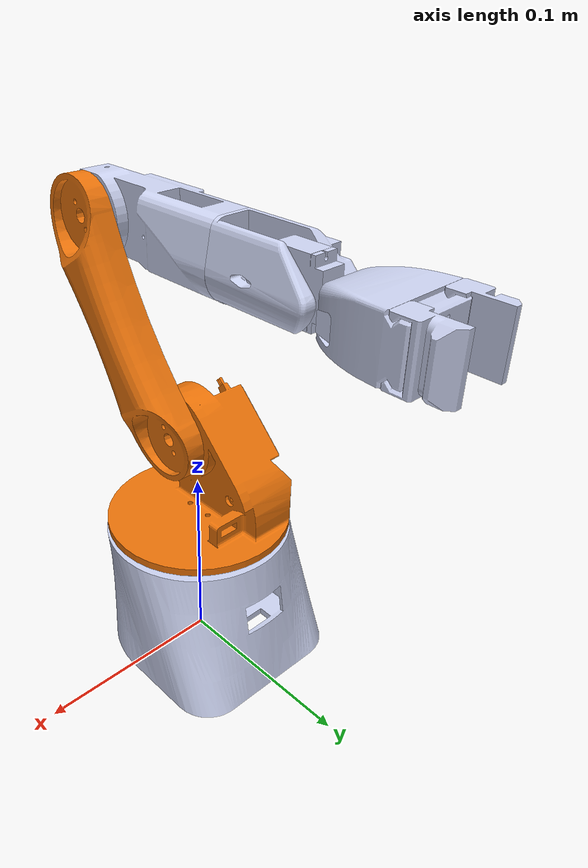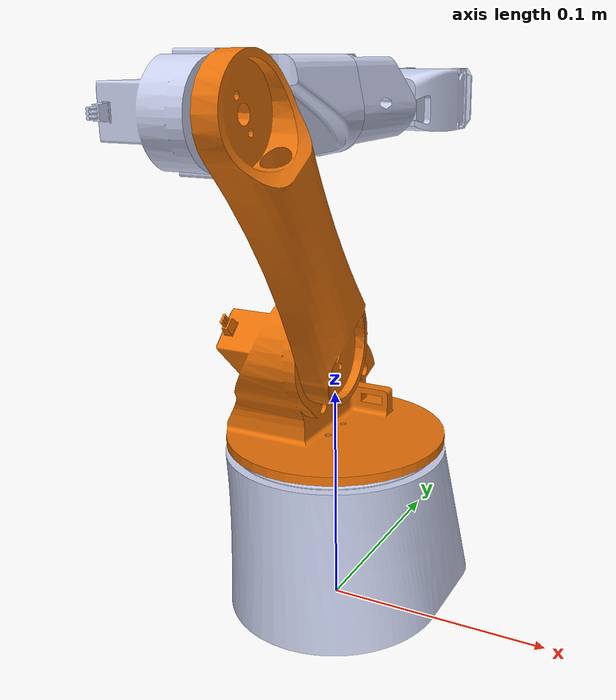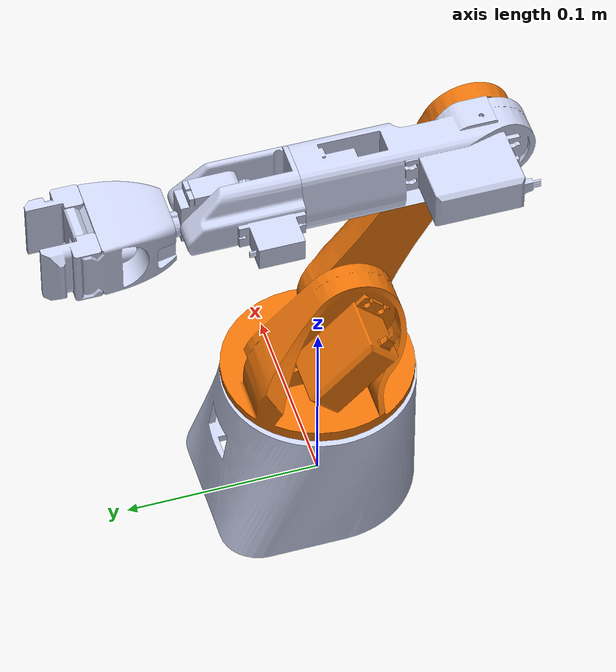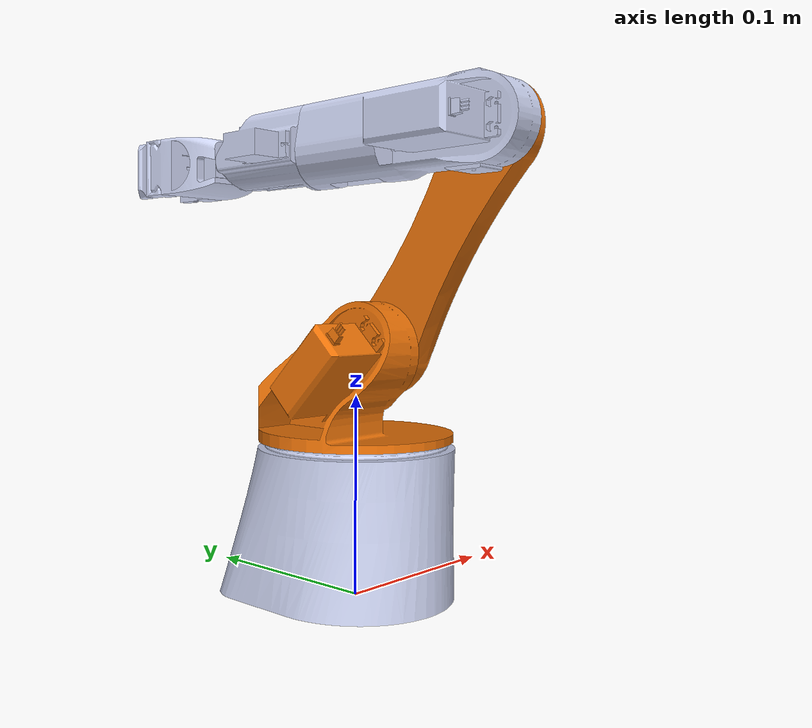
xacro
<?xml version="1.0"?>
<robot xmlns:xacro="http://www.ros.org/wiki/xacro" name="Drago">
    <xacro:arg name="initial_positions_file" default="initial_positions.yaml" />

    <!-- Import Drago urdf file -->
    <xacro:include filename="$(find drago_description_pkg)/urdf/drago.urdf" />

    <!-- Import control_xacro -->
    <xacro:include filename="Drago.ros2_control.xacro" />

    <xacro:Drago_ros2_control name="DragoSystem" initial_positions_file="$(arg initial_positions_file)"/>

</robot>

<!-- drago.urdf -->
<robot
  name="Drago">
  <link
    name="base_link">
    <inertial>
      <origin
        xyz="-7.72856457749698E-05 0.000985506421665394 0.0316640950040682"
        rpy="0 0 0" />
      <mass
        value="0.1474375874572" />
      <inertia
        ixx="0.000241687171403802"
        ixy="2.76044882976438E-07"
        ixz="5.3745744400699E-09"
        iyy="0.000213930288448861"
        iyz="7.09557385158071E-06"
        izz="0.000309365156484479" />
    </inertial>
    <visual>
      <origin
        xyz="0 0 0"
        rpy="0 0 0" />
      <geometry>
        <mesh
          filename="package://drago_description_pkg/meshes/base_link.STL" />
      </geometry>
      <material
        name="">
        <color
          rgba="0.792156862745098 0.819607843137255 0.933333333333333 1" />
      </material>
    </visual>
    <collision>
      <origin
        xyz="0 0 0"
        rpy="0 0 0" />
      <geometry>
        <mesh
          filename="package://drago_description_pkg/meshes/base_link.STL" />
      </geometry>
    </collision>
  </link>
  <link
    name="Waist_link">
    <inertial>
      <origin
        xyz="-0.0126076694523848 -0.000689380789856253 0.020405315651427"
        rpy="0 0 0" />
      <mass
        value="0.114312272517247" />
      <inertia
        ixx="7.49456466486768E-05"
        ixy="2.03547014845499E-06"
        ixz="3.5602677219693E-06"
        iyy="5.85772537754704E-05"
        iyz="7.34921578534803E-06"
        izz="7.44043523111878E-05" />
    </inertial>
    <visual>
      <origin
        xyz="0 0 0"
        rpy="0 0 0" />
      <geometry>
        <mesh
          filename="package://drago_description_pkg/meshes/Waist_link.STL" />
      </geometry>
      <material
        name="">
        <color
          rgba="0.909803921568627 0.443137254901961 0.0313725490196078 1" />
      </material>
    </visual>
    <collision>
      <origin
        xyz="0 0 0"
        rpy="0 0 0" />
      <geometry>
        <mesh
          filename="package://drago_description_pkg/meshes/Waist_link.STL" />
      </geometry>
    </collision>
  </link>
  <joint
    name="Waist_joint"
    type="revolute">
    <origin
      xyz="0 0.000299999804291295 0.0823428680948091"
      rpy="0 0 0" />
    <parent
      link="base_link" />
    <child
      link="Waist_link" />
    <axis
      xyz="0 0 1" />
    <limit
      lower="-1.57"
      upper="1.57"
      effort="1"
      velocity="3" />
    <dynamics
      damping="1"
      friction="1" />
  </joint>
  <link
    name="Shoulder_link">
    <inertial>
      <origin
        xyz="-1.12699373916447E-07 0.0600135170515176 0.00480459549380981"
        rpy="0 0 0" />
      <mass
        value="0.0683063019704699" />
      <inertia
        ixx="0.000111335443757709"
        ixy="1.95406984549249E-10"
        ixz="6.26284334982906E-11"
        iyy="9.89041420319741E-06"
        iyz="-1.38128948633086E-08"
        izz="0.000116571269127672" />
    </inertial>
    <visual>
      <origin
        xyz="0 0 0"
        rpy="0 0 0" />
      <geometry>
        <mesh
          filename="package://drago_description_pkg/meshes/Shoulder_link.STL" />
      </geometry>
      <material
        name="">
        <color
          rgba="0.909803921568627 0.447058823529412 0.0431372549019608 1" />
      </material>
    </visual>
    <collision>
      <origin
        xyz="0 0 0"
        rpy="0 0 0" />
      <geometry>
        <mesh
          filename="package://drago_description_pkg/meshes/Shoulder_link.STL" />
      </geometry>
    </collision>
  </link>
  <joint
    name="Shoulder_joint"
    type="revolute">
    <origin
      xyz="0.00470000000000012 -0.01391 0.0402799999999999"
      rpy="1.5707963267949 -0.559711205792866 1.5707963267949" />
    <parent
      link="Waist_link" />
    <child
      link="Shoulder_link" />
    <axis
      xyz="0 0 -1" />
    <limit
      lower="-1.31"
      upper="2.5"
      effort="1"
      velocity="3" />
  </joint>
  <link
    name="Elbow_link">
    <inertial>
      <origin
        xyz="0.0346159193653191 -6.32510692880062E-05 -0.0207878297998635"
        rpy="0 0 0" />
      <mass
        value="0.0997434531792725" />
      <inertia
        ixx="1.818428969751E-05"
        ixy="-4.57160987594351E-08"
        ixz="9.29775106159709E-07"
        iyy="6.97565602777627E-05"
        iyz="-3.94275296036223E-07"
        izz="7.07521243226271E-05" />
    </inertial>
    <visual>
      <origin
        xyz="0 0 0"
        rpy="0 0 0" />
      <geometry>
        <mesh
          filename="package://drago_description_pkg/meshes/Elbow_link.STL" />
      </geometry>
      <material
        name="">
        <color
          rgba="0.792156862745098 0.819607843137255 0.933333333333333 1" />
      </material>
    </visual>
    <collision>
      <origin
        xyz="0 0 0"
        rpy="0 0 0" />
      <geometry>
        <mesh
          filename="package://drago_description_pkg/meshes/Elbow_link.STL" />
      </geometry>
    </collision>
  </link>
  <joint
    name="Elbow_joint"
    type="revolute">
    <origin
      xyz="0 0.12 0"
      rpy="0 0 -0.559711205792866" />
    <parent
      link="Shoulder_link" />
    <child
      link="Elbow_link" />
    <axis
      xyz="0 0 -1" />
    <limit
      lower="-4"
      upper="0.12"
      effort="1"
      velocity="3" />
  </joint>
  <link
    name="Wrist_1_link">
    <inertial>
      <origin
        xyz="0.0233567454985734 0.00366255184276276 -0.00631749983504008"
        rpy="0 0 0" />
      <mass
        value="0.0364225917173961" />
      <inertia
        ixx="7.1636312023005E-06"
        ixy="4.57023572830182E-07"
        ixz="3.8874307928469E-07"
        iyy="1.29519866849324E-05"
        iyz="2.94918004449321E-08"
        izz="1.12621365094926E-05" />
    </inertial>
    <visual>
      <origin
        xyz="0 0 0"
        rpy="0 0 0" />
      <geometry>
        <mesh
          filename="package://drago_description_pkg/meshes/Wrist_1_link.STL" />
      </geometry>
      <material
        name="">
        <color
          rgba="0.792156862745098 0.819607843137255 0.933333333333333 1" />
      </material>
    </visual>
    <collision>
      <origin
        xyz="0 0 0"
        rpy="0 0 0" />
      <geometry>
        <mesh
          filename="package://drago_description_pkg/meshes/Wrist_1_link.STL" />
      </geometry>
    </collision>
  </link>
  <joint
    name="Wrist_1_joint"
    type="revolute">
    <origin
      xyz="0.0944000000000003 -0.00500000000000012 -0.0150000000000001"
      rpy="0 0 0" />
    <parent
      link="Elbow_link" />
    <child
      link="Wrist_1_link" />
    <axis
      xyz="-1 0 0" />
    <limit
      lower="-1.57"
      upper="1.57"
      effort="1"
      velocity="3" />
  </joint>
  <link
    name="Wrist_2_link">
    <inertial>
      <origin
        xyz="0.0168531926533761 0.000122222985653231 -0.00156810835529166"
        rpy="0 0 0" />
      <mass
        value="0.0139246019270835" />
      <inertia
        ixx="1.16538358935657E-06"
        ixy="-9.29033431222823E-09"
        ixz="-5.1108087154368E-08"
        iyy="1.11291360778585E-06"
        iyz="9.89135170487405E-09"
        izz="1.89566093244876E-06" />
    </inertial>
    <visual>
      <origin
        xyz="0 0 0"
        rpy="0 0 0" />
      <geometry>
        <mesh
          filename="package://drago_description_pkg/meshes/Wrist_2_link.STL" />
      </geometry>
      <material
        name="">
        <color
          rgba="0.792156862745098 0.819607843137255 0.933333333333333 1" />
      </material>
    </visual>
    <collision>
      <origin
        xyz="0 0 0"
        rpy="0 0 0" />
      <geometry>
        <mesh
          filename="package://drago_description_pkg/meshes/Wrist_2_link.STL" />
      </geometry>
    </collision>
  </link>
  <joint
    name="Wrist_2_joint"
    type="revolute">
    <origin
      xyz="0.0208399325599607 0.00340387650924096 0.00127964919234359"
      rpy="0 0 0" />
    <parent
      link="Wrist_1_link" />
    <child
      link="Wrist_2_link" />
    <axis
      xyz="0 0 -1" />
    <limit
      lower="-1.57"
      upper="1.57"
      effort="1"
      velocity="3" />
  </joint>
  <link
    name="Effector_link">
    <inertial>
      <origin
        xyz="-2.26381413614973E-16 -5.55111512312578E-17 0.00447696690039018"
        rpy="0 0 0" />
      <mass
        value="0.0031625371291834" />
      <inertia
        ixx="6.38210417468505E-08"
        ixy="1.20792521417058E-23"
        ixz="-1.20896068150185E-22"
        iyy="2.60651552513833E-07"
        iyz="-2.70674250245187E-23"
        izz="2.7433763130509E-07" />
    </inertial>
    <visual>
      <origin
        xyz="0 0 0"
        rpy="0 0 0" />
      <geometry>
        <mesh
          filename="package://drago_description_pkg/meshes/Effector_link.STL" />
      </geometry>
      <material
        name="">
        <color
          rgba="0.792156862745098 0.819607843137255 0.933333333333333 1" />
      </material>
    </visual>
    <collision>
      <origin
        xyz="0 0 0"
        rpy="0 0 0" />
      <geometry>
        <mesh
          filename="package://drago_description_pkg/meshes/Effector_link.STL" />
      </geometry>
    </collision>
  </link>
  <joint
    name="Effector_joint"
    type="revolute">
    <origin
      xyz="0.0408435294675011 -0.00511048363110789 -0.00140782639546167"
      rpy="0 1.5707963267949 0" />
    <parent
      link="Wrist_2_link" />
    <child
      link="Effector_link" />
    <axis
      xyz="0 0 1" />
    <limit
      lower="-1.57"
      upper="1.57"
      effort="1"
      velocity="3" />
  </joint>
  <link
    name="Gripper_link">
    <inertial>
      <origin
        xyz="-0.000106292521820447 7.00052063247747E-05 -0.0308465298604367"
        rpy="0 0 0" />
      <mass
        value="0.0338622957317034" />
      <inertia
        ixx="7.91995838822288E-06"
        ixy="-2.30377262160725E-09"
        ixz="-4.69066405301153E-07"
        iyy="1.02346743518635E-05"
        iyz="2.44836828172283E-07"
        izz="8.29268801668815E-06" />
    </inertial>
    <visual>
      <origin
        xyz="0 0 0"
        rpy="0 0 0" />
      <geometry>
        <mesh
          filename="package://drago_description_pkg/meshes/Gripper_link.STL" />
      </geometry>
      <material
        name="">
        <color
          rgba="0.792156862745098 0.819607843137255 0.933333333333333 1" />
      </material>
    </visual>
    <collision>
      <origin
        xyz="0 0 0"
        rpy="0 0 0" />
      <geometry>
        <mesh
          filename="package://drago_description_pkg/meshes/Gripper_link.STL" />
      </geometry>
    </collision>
  </link>
  <joint
    name="Gripper_joint"
    type="fixed">
    <origin
      xyz="0.000766471836677465 0.00373197464508285 0.0551499896883955"
      rpy="0 0 0" />
    <parent
      link="Effector_link" />
    <child
      link="Gripper_link" />
    <axis
      xyz="0 0 0" />
  </joint>
  <link
    name="Right_Claw_link">
    <inertial>
      <origin
        xyz="-0.00243565880725227 -2.1791745075106E-09 0.0060195460687709"
        rpy="0 0 0" />
      <mass
        value="0.00458904721552371" />
      <inertia
        ixx="4.32117400461652E-07"
        ixy="-6.24226617680927E-14"
        ixz="-5.88521738706436E-09"
        iyy="2.30501583735766E-07"
        iyz="4.21317731608207E-15"
        izz="5.92146413710267E-07" />
    </inertial>
    <visual>
      <origin
        xyz="0 0 0"
        rpy="0 0 0" />
      <geometry>
        <mesh
          filename="package://drago_description_pkg/meshes/Right_Claw_link.STL" />
      </geometry>
      <material
        name="">
        <color
          rgba="0.792156862745098 0.819607843137255 0.933333333333333 1" />
      </material>
    </visual>
    <collision>
      <origin
        xyz="0 0 0"
        rpy="0 0 0" />
      <geometry>
        <mesh
          filename="package://drago_description_pkg/meshes/Right_Claw_link.STL" />
      </geometry>
    </collision>
  </link>
  <joint
    name="Right_Claw_joint"
    type="prismatic">
    <origin
      xyz="-0.022433 -0.0003 0"
      rpy="3.1415 -1.5708 0" />
    <parent
      link="Gripper_link" />
    <child
      link="Right_Claw_link" />
    <axis
      xyz="0 0 1" />
    <limit
      lower="0"
      upper="0.013"
      effort="0"
      velocity="0" />
  </joint>
  <link
    name="Left_Claw_link">
    <inertial>
      <origin
        xyz="-0.00243565882245883 2.17917545120017E-09 0.00601954604159792"
        rpy="0 0 0" />
      <mass
        value="0.00458904733917677" />
      <inertia
        ixx="4.32117421724389E-07"
        ixy="6.24226649182804E-14"
        ixz="-5.88521745743767E-09"
        iyy="2.30501584191406E-07"
        iyz="-4.21317889749309E-15"
        izz="5.92146434925873E-07" />
    </inertial>
    <visual>
      <origin
        xyz="0 0 0"
        rpy="0 0 0" />
      <geometry>
        <mesh
          filename="package://drago_description_pkg/meshes/Left_Claw_link.STL" />
      </geometry>
      <material
        name="">
        <color
          rgba="0.792156862745098 0.819607843137255 0.933333333333333 1" />
      </material>
    </visual>
    <collision>
      <origin
        xyz="0 0 0"
        rpy="0 0 0" />
      <geometry>
        <mesh
          filename="package://drago_description_pkg/meshes/Left_Claw_link.STL" />
      </geometry>
    </collision>
  </link>
  <joint
    name="Left_Claw_joint"
    type="prismatic">
    <origin
      xyz="0.022567 -0.0003 0"
      rpy="0 -1.5708 0" />
    <parent
      link="Gripper_link" />
    <child
      link="Left_Claw_link" />
    <axis
      xyz="0 0 1" />
    <limit
      lower="0"
      upper="0.013"
      effort="0"
      velocity="0" />
  </joint>
</robot>
